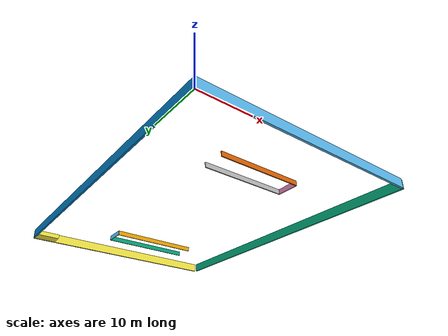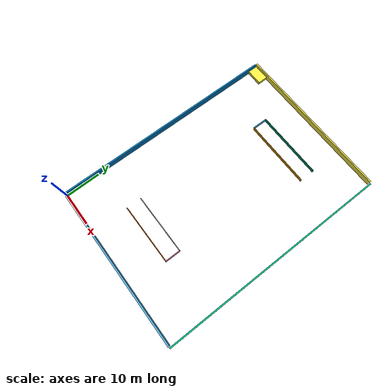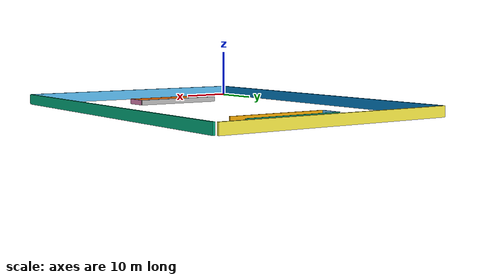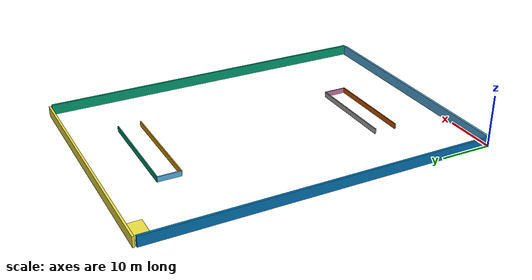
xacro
<?xml version="1.0"?>
<robot xmlns:xacro="http://www.ros.org/wiki/xacro"
       name="izs-carpark-top">

  <xacro:include filename="$(find cob_gazebo_worlds)/urdf/common.xacro" />
  <xacro:include filename="$(find cob_gazebo_worlds)/urdf/materials.urdf.xacro" />

  <xacro:macro name="izs-carpark-top" params="name">
  </xacro:macro>
  <xacro:macro name="izs-carpark-top" params="name">

  <gazebo>
    <plugin name="environment_gazebo_ros_control" filename="libgazebo_ros_control.so">
      <robotNamespace>world</robotNamespace>
      <robotParam>/world_description</robotParam>
    </plugin>
  </gazebo>

  <!-- world -->
  <link name="world"/>

  <!-- walls -->
  <!-- wall_00 -->
  <link name="wall_00">
    <xacro:box_inertial x="48" y="0.4" z="2" mass="5000.0">
      <origin xyz="0 0 0" rpy="0 0 0" />
    </xacro:box_inertial>
    <visual>
      <origin xyz="0 0 0" />
      <geometry>
        <box size="48 0.4 2" />
      </geometry>
    </visual>
    <collision>
      <origin xyz="0 0 0" />
      <geometry>
        <box size="48 0.4 2" />
      </geometry>
    </collision>
  </link>

  <gazebo reference="wall_00">
    <material>IPA/Wall2</material>
  </gazebo>

  <joint name="joint_wall_00" type="fixed">
    <origin xyz="24 0.0 1" rpy="0 0 0" />
    <parent link="world" />
    <child link="wall_00" />
  </joint>

  <!-- wall_01 -->
  <link name="wall_01">
    <xacro:box_inertial x="0.4" y="66.55" z="2" mass="5000.0">
      <origin xyz="0 0 0" rpy="0 0 0" />
    </xacro:box_inertial>
    <visual>
      <origin xyz="0 0 0" />
      <geometry>
        <box size="0.4 66.5 2" />
      </geometry>
    </visual>
    <collision>
      <origin xyz="0 0 0" />
      <geometry>
        <box size="0.4 66.5 2" />
      </geometry>
    </collision>
  </link>

  <gazebo reference="wall_01">
    <material>IPA/Wall2</material>
  </gazebo>

  <joint name="joint_wall_01" type="fixed">
    <origin xyz="48.4 33.25 1" rpy="0 0 0" />
    <parent link="world" />
    <child link="wall_01" />
  </joint>
  <!-- wall_02 -->
  <link name="wall_02">
    <xacro:box_inertial x="48" y="0.4" z="2" mass="5000.0">
      <origin xyz="0 0 0" rpy="0 0 0" />
    </xacro:box_inertial>
    <visual>
      <origin xyz="0 0 0" />
      <geometry>
        <box size="48 0.4 2" />
      </geometry>
    </visual>
    <collision>
      <origin xyz="0 0 0" />
      <geometry>
        <box size="48 0.4 2" />
      </geometry>
    </collision>
  </link>

  <gazebo reference="wall_02">
    <material>IPA/Wall2</material>
  </gazebo>

  <joint name="joint_wall_02" type="fixed">
    <origin xyz="24 66.95 1" rpy="0 0 0" />
    <parent link="world" />
    <child link="wall_02" />
  </joint>
  <!-- wall_03 -->
  <link name="wall_03">
    <xacro:box_inertial x="0.4" y="66.55" z="2" mass="5000.0">
      <origin xyz="0 0 0" rpy="0 0 0" />
    </xacro:box_inertial>
    <visual>
      <origin xyz="0 0 0" />
      <geometry>
        <box size="0.4 66.5 2" />
      </geometry>
    </visual>
    <collision>
      <origin xyz="0 0 0" />
      <geometry>
        <box size="0.4 66.5 2" />
      </geometry>
    </collision>
  </link>

  <gazebo reference="wall_03">
    <material>IPA/Wall2</material>
  </gazebo>

  <joint name="joint_wall_03" type="fixed">
    <origin xyz="0 33.25 1" rpy="0 0 0" />
    <parent link="world" />
    <child link="wall_03" />
  </joint>

  <!-- ramp_00 -->
  <link name="ramp_00">
    <xacro:box_inertial x="17.89" y="0.2" z="1" mass="5000.0">
      <origin xyz="0 0 0" rpy="0 0 0" />
    </xacro:box_inertial>
    <visual>
      <origin xyz="0 0 0" />
      <geometry>
        <box size="17.89 0.2 1" />
      </geometry>
    </visual>
    <collision>
      <origin xyz="0 0 0" />
      <geometry>
        <box size="17.89 0.2 1" />
      </geometry>
    </collision>
  </link>

  <gazebo reference="ramp_00">
    <material>IPA/Wall2</material>
  </gazebo>

  <joint name="joint_ramp_00" type="fixed">
    <origin xyz="22.15 10.95 0.5" rpy="0 0 0" />
    <parent link="world" />
    <child link="ramp_00" />
  </joint>

  <!-- ramp_01 -->
  <link name="ramp_01">
    <xacro:box_inertial x="0.2" y="4.4" z="1" mass="5000.0">
      <origin xyz="0 0 0" rpy="0 0 0" />
    </xacro:box_inertial>
    <visual>
      <origin xyz="0 0 0" />
      <geometry>
        <box size="0.2 4.4 1" />
      </geometry>
    </visual>
    <collision>
      <origin xyz="0 0 0" />
      <geometry>
        <box size="0.2 4.4 1" />
      </geometry>
    </collision>
  </link>

  <gazebo reference="ramp_01">
    <material>IPA/Wall2</material>
  </gazebo>

  <joint name="joint_ramp_01" type="fixed">
    <origin xyz="31.1 13.15 0.5" rpy="0 0 0" />
    <parent link="world" />
    <child link="ramp_01" />
  </joint>

  <!-- ramp_02 -->
  <link name="ramp_02">
    <xacro:box_inertial x="17.89" y="0.2" z="1" mass="5000.0">
      <origin xyz="0 0 0" rpy="0 0 0" />
    </xacro:box_inertial>
    <visual>
      <origin xyz="0 0 0" />
      <geometry>
        <box size="17.89 0.2 1" />
      </geometry>
    </visual>
    <collision>
      <origin xyz="0 0 0" />
      <geometry>
        <box size="17.89 0.2 1" />
      </geometry>
    </collision>
  </link>

  <gazebo reference="ramp_02">
    <material>IPA/Wall2</material>
  </gazebo>

  <joint name="joint_ramp_02" type="fixed">
    <origin xyz="22.15 15.35 0.5" rpy="0 0 0" />
    <parent link="world" />
    <child link="ramp_02" />
  </joint>
  <!-- ramp_03 -->
  <link name="ramp_03">
    <xacro:box_inertial x="20.3" y="0.2" z="1" mass="5000.0">
      <origin xyz="0 0 0" rpy="0 0 0" />
    </xacro:box_inertial>
    <visual>
      <origin xyz="0 0 0" />
      <geometry>
        <box size="20.3 0.2 1" />
      </geometry>
    </visual>
    <collision>
      <origin xyz="0 0 0" />
      <geometry>
        <box size="20.3 0.2 1" />
      </geometry>
    </collision>
  </link>

  <gazebo reference="ramp_03">
    <material>IPA/Wall2</material>
  </gazebo>

  <joint name="joint_ramp_03" type="fixed">
    <origin xyz="25.85 52.95 0.5" rpy="0 0 0" />
    <parent link="world" />
    <child link="ramp_03" />
  </joint>

  <!-- ramp_04 -->
  <link name="ramp_04">
    <xacro:box_inertial x="0.2" y="4.4" z="1" mass="5000.0">
      <origin xyz="0 0 0" rpy="0 0 0" />
    </xacro:box_inertial>
    <visual>
      <origin xyz="0 0 0" />
      <geometry>
        <box size="0.2 4.4 1" />
      </geometry>
    </visual>
    <collision>
      <origin xyz="0 0 0" />
      <geometry>
        <box size="0.2 4.4 1" />
      </geometry>
    </collision>
  </link>

  <gazebo reference="ramp_04">
    <material>IPA/Wall2</material>
  </gazebo>

  <joint name="joint_ramp_04" type="fixed">
    <origin xyz="15.7 55.15 0.5" rpy="0 0 0" />
    <parent link="world" />
    <child link="ramp_04" />
  </joint>

  <!-- ramp_05 -->
  <link name="ramp_05">
    <xacro:box_inertial x="20.3" y="0.2" z="1" mass="5000.0">
      <origin xyz="0 0 0" rpy="0 0 0" />
    </xacro:box_inertial>
    <visual>
      <origin xyz="0 0 0" />
      <geometry>
        <box size="20.3 0.2 1" />
      </geometry>
    </visual>
    <collision>
      <origin xyz="0 0 0" />
      <geometry>
        <box size="20.3 0.2 1" />
      </geometry>
    </collision>
  </link>

  <gazebo reference="ramp_05">
    <material>IPA/Wall2</material>
  </gazebo>

  <joint name="joint_ramp_05" type="fixed">
    <origin xyz="25.85 57.35 0.5" rpy="0 0 0" />
    <parent link="world" />
    <child link="ramp_05" />
  </joint>

  <!-- staircase_00 -->
  <link name="staircase_00">
    <xacro:box_inertial x="4.8" y="2.92" z="1" mass="5000.0">
      <origin xyz="0 0 0" rpy="0 0 0" />
    </xacro:box_inertial>
    <visual>
      <origin xyz="0 0 0" />
      <geometry>
        <box size="4.8 2.92 1" />
      </geometry>
    </visual>
    <collision>
      <origin xyz="0 0 0" />
      <geometry>
        <box size="4.8 2.92 1" />
      </geometry>
    </collision>
  </link>

  <gazebo reference="staircase_00">
    <material>IPA/Wall2</material>
  </gazebo>

  <joint name="joint_staircase_00" type="fixed">
    <origin xyz="2.6 65.29 0.5" rpy="0 0 0" />
    <parent link="world" />
    <child link="staircase_00" />
  </joint>

  </xacro:macro>
  <xacro:izs-carpark-top name="izs-carpark-top" />

</robot>

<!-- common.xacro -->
<robot xmlns:xacro="http://www.ros.org/wiki/xacro">

  <xacro:property name="M_PI" value="3.1415926535897931" />

  <!-- see https://secure.wikimedia.org/wikipedia/en/wiki/List_of_moment_of_inertia_tensors -->
  <xacro:macro name="sphere_inertial" params="radius mass *origin">
    <inertial>
      <mass value="${mass}" />
      <xacro:insert_block name="origin" />
      <inertia ixx="${0.4 * mass * radius * radius}" ixy="0.0" ixz="0.0"
        iyy="${0.4 * mass * radius * radius}" iyz="0.0"
        izz="${0.4 * mass * radius * radius}" />
    </inertial>
  </xacro:macro>

  <xacro:macro name="cylinder_inertial" params="radius length mass *origin">
    <inertial>
      <mass value="${mass}" />
      <xacro:insert_block name="origin" />
      <inertia ixx="${0.0833333 * mass * (3 * radius * radius + length * length)}" ixy="0.0" ixz="0.0"
        iyy="${0.0833333 * mass * (3 * radius * radius + length * length)}" iyz="0.0"
        izz="${0.5 * mass * radius * radius}" />
    </inertial>
  </xacro:macro>

  <xacro:macro name="box_inertial" params="x y z mass *origin">
    <inertial>
      <mass value="${mass}" />
      <xacro:insert_block name="origin" />
      <inertia ixx="${0.0833333 * mass * (y*y + z*z)}" ixy="0.0" ixz="0.0"
        iyy="${0.0833333 * mass * (x*x + z*z)}" iyz="0.0"
        izz="${0.0833333 * mass * (x*x + y*y)}" />
    </inertial>
  </xacro:macro>

  <xacro:macro name="default_inertial">
    <inertial>
      <mass value="0.01"/>
      <origin xyz="0 0 0"/>
      <inertia ixx="0.001" ixy="0.0" ixz="0.0" iyy="0.001" iyz="0.0" izz="0.001" />
    </inertial>
  </xacro:macro>

</robot>

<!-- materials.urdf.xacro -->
<robot>

  <material name="IPA/Blue">
    <color rgba="0.0 0.0 0.8 1.0"/>
  </material>

  <material name="IPA/Green">
    <color rgba="0.0 0.8 0.0 1.0"/>
  </material>

  <material name="IPA/Grey">
    <color rgba="0.7 0.7 0.7 1.0"/>
  </material>

  <material name="IPA/Grey2">
    <color rgba="0.81 0.81 0.81 1.0"/>
  </material>

  <material name="IPA/Red">
    <color rgba="0.8 0.0 0.0 1.0"/>
  </material>

  <material name="IPA/White">
    <color rgba="1.0 1.0 1.0 1.0"/>
  </material>

  <material name="IPA/Black">
    <color rgba="0.0 0.0 0.0 1.0"/>
  </material>

  <material name="IPA/Transparent">
    <color rgba="0.81 0.81 0.81 0.0"/>
  </material>

  <material name="IPA/LightBlue">
    <color rgba="0.624 0.698 0.858 1"/>
  </material>

</robot>
